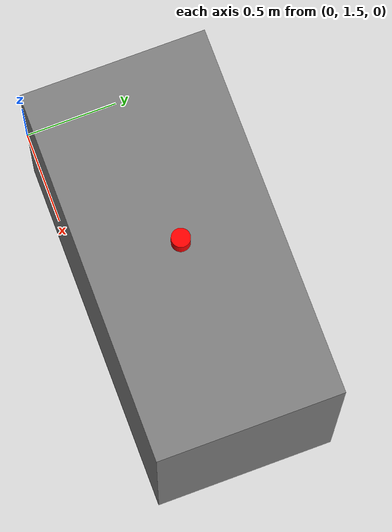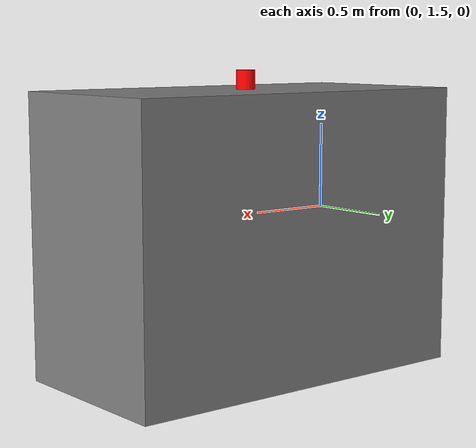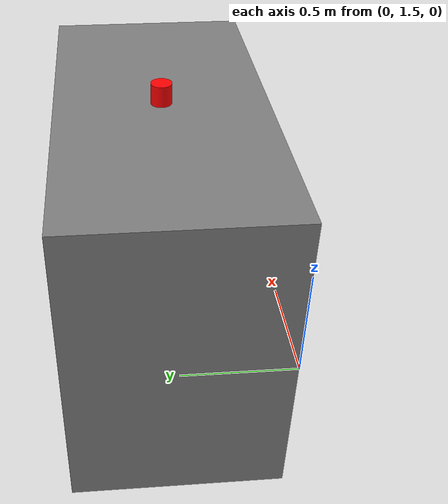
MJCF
<!-- /simulator/scene.xml -->
<mujoco>
    <worldbody>
        <!-- Define the robot here -->
        <body name="robot" pos="0 0 0">
            <!-- Robot joints and links -->
        </body>

        <!-- Define the kitchen table -->
        <geom name="kitchen_table" type="box" size="1 0.5 0.75" pos="1 2 0"/>

        <!-- Define the red cup -->
        <body name="red_cup" pos="1 2 0.75">
            <geom type="cylinder" size="0.05 0.1" rgba="1 0 0 1"/>
        </body>
    </worldbody>

    <asset>
        <!-- Textures and materials if needed -->
    </asset>
</mujoco>
